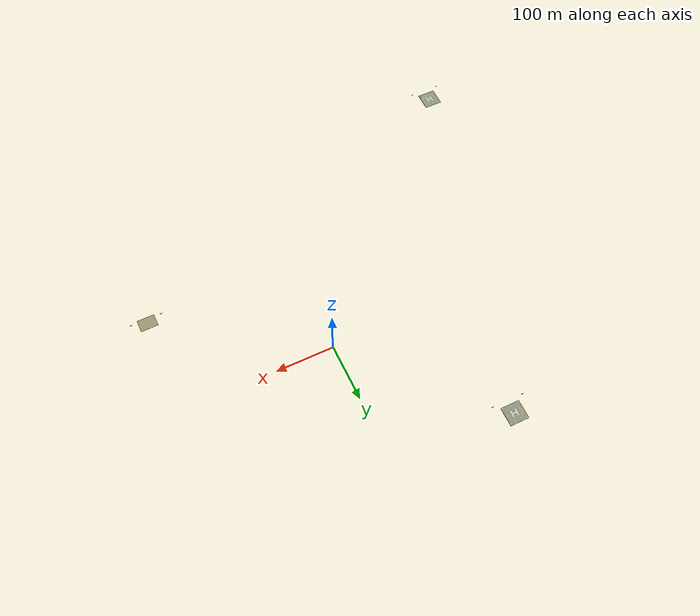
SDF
<?xml version='1.0' encoding='utf-8'?>
<sdf version="1.9">
  <model name="showcase_clearings">
    <static>true</static>
    <link name="landscape">
      <visual name="clearings">
        <cast_shadows>true</cast_shadows>
        <geometry>
          <mesh>
            <uri>model://showcase_clearings/meshes/clearings.dae</uri>
          </mesh>
        </geometry>
      </visual>
      <collision name="foundation_0">
        <pose>-325 -302 125.40058656560478 0 0 0</pose>
        <geometry>
          <box>
            <size>28 28 0.6</size>
          </box>
        </geometry>
      </collision>
      <collision name="foundation_1">
        <pose>260 -73 170.4130429163623 0 0 0</pose>
        <geometry>
          <box>
            <size>26 19 0.4</size>
          </box>
        </geometry>
      </collision>
      <collision name="foundation_2">
        <pose>-140 285 197.94680746284016 0 0 0</pose>
        <geometry>
          <box>
            <size>28 28 0.6</size>
          </box>
        </geometry>
      </collision>
    </link>
  </model>
</sdf>
